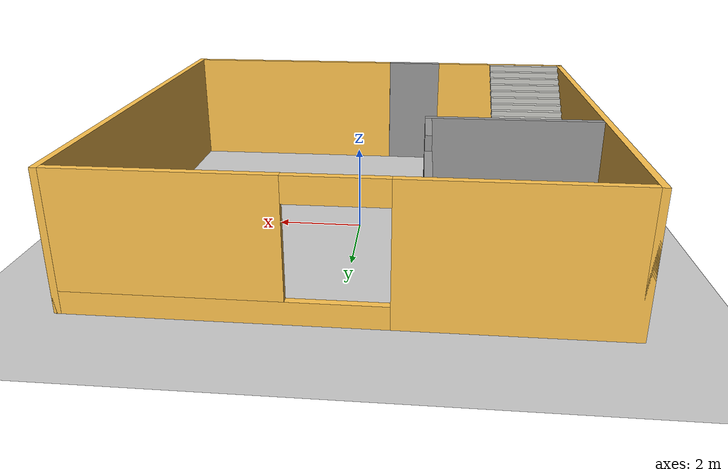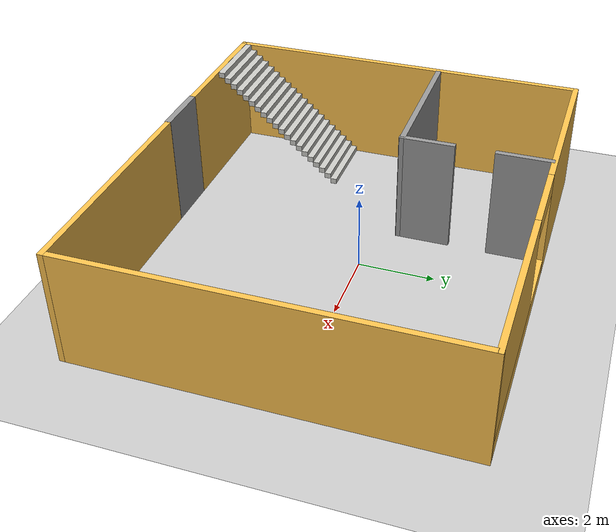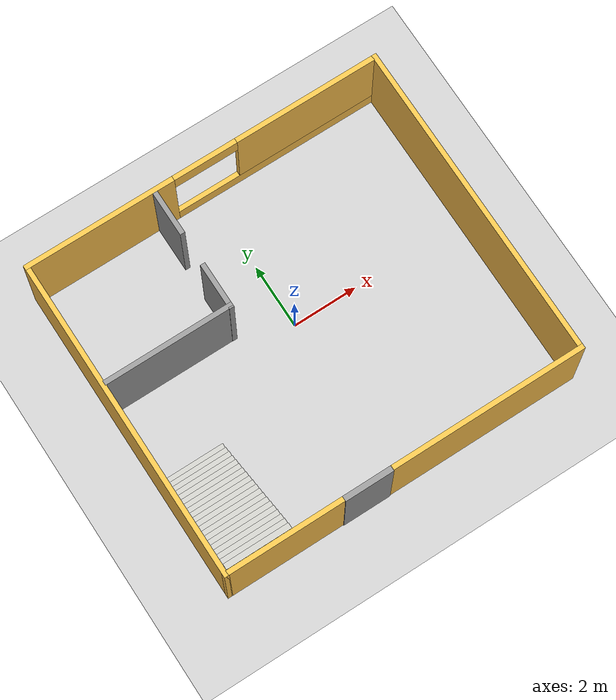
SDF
<sdf version="1.6">
 <world name="default">
  <model name="ground_plane">
   <static>1</static>
   <link name="link">
    <collision name="collision">
     <geometry><plane><normal>0 0 1</normal><size>100 100</size></plane></geometry>
     <surface>
      <contact><collide_bitmask>65535</collide_bitmask></contact>
      <friction><ode><mu>100</mu><mu2>50</mu2></ode></friction>
     </surface>
    </collision>
    <visual name="visual">
     <cast_shadows>0</cast_shadows>
     <geometry><plane><normal>0 0 1</normal><size>100 100</size></plane></geometry>
     <material>
      <script><uri>file://media/materials/scripts/gazebo.material</uri><name>Gazebo/Grey</name></script>
     </material>
    </visual>
   </link>
  </model>
  <model name="single_floor">
   <link name="Door_0">
    <pose>-1.18 -4.9275 0 0 -0 0</pose>
    <visual name="Door_0_Visual">
     <pose>0 0 1.525 0 -0 0</pose>
     <geometry><box><size>1.5 0.17 3.05</size></box></geometry>
     <material>
      <script><uri>file://media/materials/scripts/gazebo.material</uri><name>Gazebo/Grey</name></script>
     </material>
    </visual>
    <collision name="Door_0_Collision">
     <pose>0 0 1.525 0 -0 0</pose>
     <geometry><box><size>1.5 0.17 3.05</size></box></geometry>
     <surface>
      <friction>
       <ode><mu>1</mu><mu2>1</mu2><fdir1>0 0 0</fdir1><slip1>0</slip1><slip2>0</slip2></ode>
       <torsional>
        <coefficient>1</coefficient>
        <patch_radius>0</patch_radius>
        <surface_radius>0</surface_radius>
        <use_patch_radius>1</use_patch_radius>
        <ode><slip>0</slip></ode>
       </torsional>
      </friction>
      <bounce><restitution_coefficient>0</restitution_coefficient><threshold>1e+06</threshold></bounce>
      <contact>
       <collide_without_contact>0</collide_without_contact>
       <collide_without_contact_bitmask>1</collide_without_contact_bitmask>
       <collide_bitmask>1</collide_bitmask>
       <ode>
        <soft_cfm>0</soft_cfm>
        <soft_erp>0.2</soft_erp>
        <kp>1e+13</kp>
        <kd>1</kd>
        <max_vel>0.01</max_vel>
        <min_depth>0</min_depth>
       </ode>
       <bullet>
        <split_impulse>1</split_impulse>
        <split_impulse_penetration_threshold>-0.01</split_impulse_penetration_threshold>
        <soft_cfm>0</soft_cfm>
        <soft_erp>0.2</soft_erp>
        <kp>1e+13</kp>
        <kd>1</kd>
       </bullet>
      </contact>
     </surface>
    </collision>
   </link>
   <link name="Stairs_3">
    <visual name="Stairs_3_Visual_0">
     <pose>-4.47 -1.41525 0.07625 0 -0 0</pose>
     <geometry><box><size>2 0.1755 0.1525</size></box></geometry>
     <material>
      <script><uri>file://media/materials/scripts/gazebo.material</uri><name>Gazebo/CeilingTiled</name></script>
      <ambient>0.760784 0.662745 0.627451 1</ambient>
     </material>
     <meta><layer>0</layer></meta>
    </visual>
    <visual name="Stairs_3_Visual_1">
     <pose>-4.47 -1.59075 0.22875 0 -0 0</pose>
     <geometry><box><size>2 0.1755 0.1525</size></box></geometry>
     <material>
      <script><uri>file://media/materials/scripts/gazebo.material</uri><name>Gazebo/CeilingTiled</name></script>
      <ambient>0.760784 0.662745 0.627451 1</ambient>
     </material>
     <meta><layer>0</layer></meta>
    </visual>
    <visual name="Stairs_3_Visual_2">
     <pose>-4.47 -1.76625 0.38125 0 -0 0</pose>
     <geometry><box><size>2 0.1755 0.1525</size></box></geometry>
     <material>
      <script><uri>file://media/materials/scripts/gazebo.material</uri><name>Gazebo/CeilingTiled</name></script>
      <ambient>0.760784 0.662745 0.627451 1</ambient>
     </material>
     <meta><layer>0</layer></meta>
    </visual>
    <visual name="Stairs_3_Visual_11">
     <pose>-4.47 -3.34575 1.75375 0 -0 0</pose>
     <geometry><box><size>2 0.1755 0.1525</size></box></geometry>
     <material>
      <script><uri>file://media/materials/scripts/gazebo.material</uri><name>Gazebo/CeilingTiled</name></script>
      <ambient>0.760784 0.662745 0.627451 1</ambient>
     </material>
     <meta><layer>0</layer></meta>
    </visual>
    <visual name="Stairs_3_Visual_3">
     <pose>-4.47 -1.94175 0.53375 0 -0 0</pose>
     <geometry><box><size>2 0.1755 0.1525</size></box></geometry>
     <material>
      <script><uri>file://media/materials/scripts/gazebo.material</uri><name>Gazebo/CeilingTiled</name></script>
      <ambient>0.760784 0.662745 0.627451 1</ambient>
     </material>
     <meta><layer>0</layer></meta>
    </visual>
    <visual name="Stairs_3_Visual_4">
     <pose>-4.47 -2.11725 0.68625 0 -0 0</pose>
     <geometry><box><size>2 0.1755 0.1525</size></box></geometry>
     <material>
      <script><uri>file://media/materials/scripts/gazebo.material</uri><name>Gazebo/CeilingTiled</name></script>
      <ambient>0.760784 0.662745 0.627451 1</ambient>
     </material>
     <meta><layer>0</layer></meta>
    </visual>
    <visual name="Stairs_3_Visual_5">
     <pose>-4.47 -2.29275 0.83875 0 -0 0</pose>
     <geometry><box><size>2 0.1755 0.1525</size></box></geometry>
     <material>
      <script><uri>file://media/materials/scripts/gazebo.material</uri><name>Gazebo/CeilingTiled</name></script>
      <ambient>0.760784 0.662745 0.627451 1</ambient>
     </material>
     <meta><layer>0</layer></meta>
    </visual>
    <visual name="Stairs_3_Visual_6">
     <pose>-4.47 -2.46825 0.99125 0 -0 0</pose>
     <geometry><box><size>2 0.1755 0.1525</size></box></geometry>
     <material>
      <script><uri>file://media/materials/scripts/gazebo.material</uri><name>Gazebo/CeilingTiled</name></script>
      <ambient>0.760784 0.662745 0.627451 1</ambient>
     </material>
     <meta><layer>0</layer></meta>
    </visual>
    <visual name="Stairs_3_Visual_7">
     <pose>-4.47 -2.64375 1.14375 0 -0 0</pose>
     <geometry><box><size>2 0.1755 0.1525</size></box></geometry>
     <material>
      <script><uri>file://media/materials/scripts/gazebo.material</uri><name>Gazebo/CeilingTiled</name></script>
      <ambient>0.760784 0.662745 0.627451 1</ambient>
     </material>
     <meta><layer>0</layer></meta>
    </visual>
    <visual name="Stairs_3_Visual_8">
     <pose>-4.47 -2.81925 1.29625 0 -0 0</pose>
     <geometry><box><size>2 0.1755 0.1525</size></box></geometry>
     <material>
      <script><uri>file://media/materials/scripts/gazebo.material</uri><name>Gazebo/CeilingTiled</name></script>
      <ambient>0.760784 0.662745 0.627451 1</ambient>
     </material>
     <meta><layer>0</layer></meta>
    </visual>
    <visual name="Stairs_3_Visual_9">
     <pose>-4.47 -2.99475 1.44875 0 -0 0</pose>
     <geometry><box><size>2 0.1755 0.1525</size></box></geometry>
     <material>
      <script><uri>file://media/materials/scripts/gazebo.material</uri><name>Gazebo/CeilingTiled</name></script>
      <ambient>0.760784 0.662745 0.627451 1</ambient>
     </material>
     <meta><layer>0</layer></meta>
    </visual>
    <visual name="Stairs_3_Visual_10">
     <pose>-4.47 -3.17025 1.60125 0 -0 0</pose>
     <geometry><box><size>2 0.1755 0.1525</size></box></geometry>
     <material>
      <script><uri>file://media/materials/scripts/gazebo.material</uri><name>Gazebo/CeilingTiled</name></script>
      <ambient>0.760784 0.662745 0.627451 1</ambient>
     </material>
     <meta><layer>0</layer></meta>
    </visual>
    <visual name="Stairs_3_Visual_12">
     <pose>-4.47 -3.52125 1.90625 0 -0 0</pose>
     <geometry><box><size>2 0.1755 0.1525</size></box></geometry>
     <material>
      <script><uri>file://media/materials/scripts/gazebo.material</uri><name>Gazebo/CeilingTiled</name></script>
      <ambient>0.760784 0.662745 0.627451 1</ambient>
     </material>
     <meta><layer>0</layer></meta>
    </visual>
    <visual name="Stairs_3_Visual_13">
     <pose>-4.47 -3.69675 2.05875 0 -0 0</pose>
     <geometry><box><size>2 0.1755 0.1525</size></box></geometry>
     <material>
      <script><uri>file://media/materials/scripts/gazebo.material</uri><name>Gazebo/CeilingTiled</name></script>
      <ambient>0.760784 0.662745 0.627451 1</ambient>
     </material>
     <meta><layer>0</layer></meta>
    </visual>
    <visual name="Stairs_3_Visual_14">
     <pose>-4.47 -3.87225 2.21125 0 -0 0</pose>
     <geometry><box><size>2 0.1755 0.1525</size></box></geometry>
     <material>
      <script><uri>file://media/materials/scripts/gazebo.material</uri><name>Gazebo/CeilingTiled</name></script>
      <ambient>0.760784 0.662745 0.627451 1</ambient>
     </material>
     <meta><layer>0</layer></meta>
    </visual>
    <visual name="Stairs_3_Visual_15">
     <pose>-4.47 -4.04775 2.36375 0 -0 0</pose>
     <geometry><box><size>2 0.1755 0.1525</size></box></geometry>
     <material>
      <script><uri>file://media/materials/scripts/gazebo.material</uri><name>Gazebo/CeilingTiled</name></script>
      <ambient>0.760784 0.662745 0.627451 1</ambient>
     </material>
     <meta><layer>0</layer></meta>
    </visual>
    <visual name="Stairs_3_Visual_16">
     <pose>-4.47 -4.22325 2.51625 0 -0 0</pose>
     <geometry><box><size>2 0.1755 0.1525</size></box></geometry>
     <material>
      <script><uri>file://media/materials/scripts/gazebo.material</uri><name>Gazebo/CeilingTiled</name></script>
      <ambient>0.760784 0.662745 0.627451 1</ambient>
     </material>
     <meta><layer>0</layer></meta>
    </visual>
    <visual name="Stairs_3_Visual_17">
     <pose>-4.47 -4.39875 2.66875 0 -0 0</pose>
     <geometry><box><size>2 0.1755 0.1525</size></box></geometry>
     <material>
      <script><uri>file://media/materials/scripts/gazebo.material</uri><name>Gazebo/CeilingTiled</name></script>
      <ambient>0.760784 0.662745 0.627451 1</ambient>
     </material>
     <meta><layer>0</layer></meta>
    </visual>
    <visual name="Stairs_3_Visual_18">
     <pose>-4.47 -4.57425 2.82125 0 -0 0</pose>
     <geometry><box><size>2 0.1755 0.1525</size></box></geometry>
     <material>
      <script><uri>file://media/materials/scripts/gazebo.material</uri><name>Gazebo/CeilingTiled</name></script>
      <ambient>0.760784 0.662745 0.627451 1</ambient>
     </material>
     <meta><layer>0</layer></meta>
    </visual>
    <visual name="Stairs_3_Visual_19">
     <pose>-4.47 -4.74975 2.97375 0 -0 0</pose>
     <geometry><box><size>2 0.1755 0.1525</size></box></geometry>
     <material>
      <script><uri>file://media/materials/scripts/gazebo.material</uri><name>Gazebo/CeilingTiled</name></script>
      <ambient>0.760784 0.662745 0.627451 1</ambient>
     </material>
     <meta><layer>0</layer></meta>
    </visual>
    <collision name="Stairs_3_Collision_0">
     <pose>-4.47 -1.41525 0.07625 0 -0 0</pose>
     <geometry><box><size>2 0.1755 0.1525</size></box></geometry>
     <surface>
      <friction>
       <ode><mu>1</mu><mu2>1</mu2><fdir1>0 0 0</fdir1><slip1>0</slip1><slip2>0</slip2></ode>
       <torsional>
        <coefficient>1</coefficient>
        <patch_radius>0</patch_radius>
        <surface_radius>0</surface_radius>
        <use_patch_radius>1</use_patch_radius>
        <ode><slip>0</slip></ode>
       </torsional>
      </friction>
      <bounce><restitution_coefficient>0</restitution_coefficient><threshold>1e+06</threshold></bounce>
      <contact>
       <collide_without_contact>0</collide_without_contact>
       <collide_without_contact_bitmask>1</collide_without_contact_bitmask>
       <collide_bitmask>1</collide_bitmask>
       <ode>
        <soft_cfm>0</soft_cfm>
        <soft_erp>0.2</soft_erp>
        <kp>1e+13</kp>
        <kd>1</kd>
        <max_vel>0.01</max_vel>
        <min_depth>0</min_depth>
       </ode>
       <bullet>
        <split_impulse>1</split_impulse>
        <split_impulse_penetration_threshold>-0.01</split_impulse_penetration_threshold>
        <soft_cfm>0</soft_cfm>
        <soft_erp>0.2</soft_erp>
        <kp>1e+13</kp>
        <kd>1</kd>
       </bullet>
      </contact>
     </surface>
    </collision>
    <collision name="Stairs_3_Collision_1">
     <pose>-4.47 -1.59075 0.22875 0 -0 0</pose>
     <geometry><box><size>2 0.1755 0.1525</size></box></geometry>
     <surface>
      <friction>
       <ode><mu>1</mu><mu2>1</mu2><fdir1>0 0 0</fdir1><slip1>0</slip1><slip2>0</slip2></ode>
       <torsional>
        <coefficient>1</coefficient>
        <patch_radius>0</patch_radius>
        <surface_radius>0</surface_radius>
        <use_patch_radius>1</use_patch_radius>
        <ode><slip>0</slip></ode>
       </torsional>
      </friction>
      <bounce><restitution_coefficient>0</restitution_coefficient><threshold>1e+06</threshold></bounce>
      <contact>
       <collide_without_contact>0</collide_without_contact>
       <collide_without_contact_bitmask>1</collide_without_contact_bitmask>
       <collide_bitmask>1</collide_bitmask>
       <ode>
        <soft_cfm>0</soft_cfm>
        <soft_erp>0.2</soft_erp>
        <kp>1e+13</kp>
        <kd>1</kd>
        <max_vel>0.01</max_vel>
        <min_depth>0</min_depth>
       </ode>
       <bullet>
        <split_impulse>1</split_impulse>
        <split_impulse_penetration_threshold>-0.01</split_impulse_penetration_threshold>
        <soft_cfm>0</soft_cfm>
        <soft_erp>0.2</soft_erp>
        <kp>1e+13</kp>
        <kd>1</kd>
       </bullet>
      </contact>
     </surface>
    </collision>
    <collision name="Stairs_3_Collision_2">
     <pose>-4.47 -1.76625 0.38125 0 -0 0</pose>
     <geometry><box><size>2 0.1755 0.1525</size></box></geometry>
     <surface>
      <friction>
       <ode><mu>1</mu><mu2>1</mu2><fdir1>0 0 0</fdir1><slip1>0</slip1><slip2>0</slip2></ode>
       <torsional>
        <coefficient>1</coefficient>
        <patch_radius>0</patch_radius>
        <surface_radius>0</surface_radius>
        <use_patch_radius>1</use_patch_radius>
        <ode><slip>0</slip></ode>
       </torsional>
      </friction>
      <bounce><restitution_coefficient>0</restitution_coefficient><threshold>1e+06</threshold></bounce>
      <contact>
       <collide_without_contact>0</collide_without_contact>
       <collide_without_contact_bitmask>1</collide_without_contact_bitmask>
       <collide_bitmask>1</collide_bitmask>
       <ode>
        <soft_cfm>0</soft_cfm>
        <soft_erp>0.2</soft_erp>
        <kp>1e+13</kp>
        <kd>1</kd>
        <max_vel>0.01</max_vel>
        <min_depth>0</min_depth>
       </ode>
       <bullet>
        <split_impulse>1</split_impulse>
        <split_impulse_penetration_threshold>-0.01</split_impulse_penetration_threshold>
        <soft_cfm>0</soft_cfm>
        <soft_erp>0.2</soft_erp>
        <kp>1e+13</kp>
        <kd>1</kd>
       </bullet>
      </contact>
     </surface>
    </collision>
    <collision name="Stairs_3_Collision_3">
     <pose>-4.47 -1.94175 0.53375 0 -0 0</pose>
     <geometry><box><size>2 0.1755 0.1525</size></box></geometry>
     <surface>
      <friction>
       <ode><mu>1</mu><mu2>1</mu2><fdir1>0 0 0</fdir1><slip1>0</slip1><slip2>0</slip2></ode>
       <torsional>
        <coefficient>1</coefficient>
        <patch_radius>0</patch_radius>
        <surface_radius>0</surface_radius>
        <use_patch_radius>1</use_patch_radius>
        <ode><slip>0</slip></ode>
       </torsional>
      </friction>
      <bounce><restitution_coefficient>0</restitution_coefficient><threshold>1e+06</threshold></bounce>
      <contact>
       <collide_without_contact>0</collide_without_contact>
       <collide_without_contact_bitmask>1</collide_without_contact_bitmask>
       <collide_bitmask>1</collide_bitmask>
       <ode>
        <soft_cfm>0</soft_cfm>
        <soft_erp>0.2</soft_erp>
        <kp>1e+13</kp>
        <kd>1</kd>
        <max_vel>0.01</max_vel>
        <min_depth>0</min_depth>
       </ode>
       <bullet>
        <split_impulse>1</split_impulse>
        <split_impulse_penetration_threshold>-0.01</split_impulse_penetration_threshold>
        <soft_cfm>0</soft_cfm>
        <soft_erp>0.2</soft_erp>
        <kp>1e+13</kp>
        <kd>1</kd>
       </bullet>
      </contact>
     </surface>
    </collision>
    <collision name="Stairs_3_Collision_4">
     <pose>-4.47 -2.11725 0.68625 0 -0 0</pose>
     <geometry><box><size>2 0.1755 0.1525</size></box></geometry>
     <surface>
      <friction>
       <ode><mu>1</mu><mu2>1</mu2><fdir1>0 0 0</fdir1><slip1>0</slip1><slip2>0</slip2></ode>
       <torsional>
        <coefficient>1</coefficient>
        <patch_radius>0</patch_radius>
        <surface_radius>0</surface_radius>
        <use_patch_radius>1</use_patch_radius>
        <ode><slip>0</slip></ode>
       </torsional>
      </friction>
      <bounce><restitution_coefficient>0</restitution_coefficient><threshold>1e+06</threshold></bounce>
      <contact>
       <collide_without_contact>0</collide_without_contact>
       <collide_without_contact_bitmask>1</collide_without_contact_bitmask>
       <collide_bitmask>1</collide_bitmask>
       <ode>
        <soft_cfm>0</soft_cfm>
        <soft_erp>0.2</soft_erp>
        <kp>1e+13</kp>
        <kd>1</kd>
        <max_vel>0.01</max_vel>
        <min_depth>0</min_depth>
       </ode>
       <bullet>
        <split_impulse>1</split_impulse>
        <split_impulse_penetration_threshold>-0.01</split_impulse_penetration_threshold>
        <soft_cfm>0</soft_cfm>
        <soft_erp>0.2</soft_erp>
        <kp>1e+13</kp>
        <kd>1</kd>
       </bullet>
      </contact>
     </surface>
    </collision>
    <collision name="Stairs_3_Collision_5">
     <pose>-4.47 -2.29275 0.83875 0 -0 0</pose>
     <geometry><box><size>2 0.1755 0.1525</size></box></geometry>
     <surface>
      <friction>
       <ode><mu>1</mu><mu2>1</mu2><fdir1>0 0 0</fdir1><slip1>0</slip1><slip2>0</slip2></ode>
       <torsional>
        <coefficient>1</coefficient>
        <patch_radius>0</patch_radius>
        <surface_radius>0</surface_radius>
        <use_patch_radius>1</use_patch_radius>
        <ode><slip>0</slip></ode>
       </torsional>
      </friction>
      <bounce><restitution_coefficient>0</restitution_coefficient><threshold>1e+06</threshold></bounce>
      <contact>
       <collide_without_contact>0</collide_without_contact>
       <collide_without_contact_bitmask>1</collide_without_contact_bitmask>
       <collide_bitmask>1</collide_bitmask>
       <ode>
        <soft_cfm>0</soft_cfm>
        <soft_erp>0.2</soft_erp>
        <kp>1e+13</kp>
        <kd>1</kd>
        <max_vel>0.01</max_vel>
        <min_depth>0</min_depth>
       </ode>
       <bullet>
        <split_impulse>1</split_impulse>
        <split_impulse_penetration_threshold>-0.01</split_impulse_penetration_threshold>
        <soft_cfm>0</soft_cfm>
        <soft_erp>0.2</soft_erp>
        <kp>1e+13</kp>
        <kd>1</kd>
       </bullet>
      </contact>
     </surface>
    </collision>
    <collision name="Stairs_3_Collision_6">
     <pose>-4.47 -2.46825 0.99125 0 -0 0</pose>
     <geometry><box><size>2 0.1755 0.1525</size></box></geometry>
     <surface>
      <friction>
       <ode><mu>1</mu><mu2>1</mu2><fdir1>0 0 0</fdir1><slip1>0</slip1><slip2>0</slip2></ode>
       <torsional>
        <coefficient>1</coefficient>
        <patch_radius>0</patch_radius>
        <surface_radius>0</surface_radius>
        <use_patch_radius>1</use_patch_radius>
        <ode><slip>0</slip></ode>
       </torsional>
      </friction>
      <bounce><restitution_coefficient>0</restitution_coefficient><threshold>1e+06</threshold></bounce>
      <contact>
       <collide_without_contact>0</collide_without_contact>
       <collide_without_contact_bitmask>1</collide_without_contact_bitmask>
       <collide_bitmask>1</collide_bitmask>
       <ode>
        <soft_cfm>0</soft_cfm>
        <soft_erp>0.2</soft_erp>
        <kp>1e+13</kp>
        <kd>1</kd>
        <max_vel>0.01</max_vel>
        <min_depth>0</min_depth>
       </ode>
       <bullet>
        <split_impulse>1</split_impulse>
        <split_impulse_penetration_threshold>-0.01</split_impulse_penetration_threshold>
        <soft_cfm>0</soft_cfm>
        <soft_erp>0.2</soft_erp>
        <kp>1e+13</kp>
        <kd>1</kd>
       </bullet>
      </contact>
     </surface>
    </collision>
    <collision name="Stairs_3_Collision_7">
     <pose>-4.47 -2.64375 1.14375 0 -0 0</pose>
     <geometry><box><size>2 0.1755 0.1525</size></box></geometry>
     <surface>
      <friction>
       <ode><mu>1</mu><mu2>1</mu2><fdir1>0 0 0</fdir1><slip1>0</slip1><slip2>0</slip2></ode>
       <torsional>
        <coefficient>1</coefficient>
        <patch_radius>0</patch_radius>
        <surface_radius>0</surface_radius>
        <use_patch_radius>1</use_patch_radius>
        <ode><slip>0</slip></ode>
       </torsional>
      </friction>
      <bounce><restitution_coefficient>0</restitution_coefficient><threshold>1e+06</threshold></bounce>
      <contact>
       <collide_without_contact>0</collide_without_contact>
       <collide_without_contact_bitmask>1</collide_without_contact_bitmask>
       <collide_bitmask>1</collide_bitmask>
       <ode>
        <soft_cfm>0</soft_cfm>
        <soft_erp>0.2</soft_erp>
        <kp>1e+13</kp>
        <kd>1</kd>
        <max_vel>0.01</max_vel>
        <min_depth>0</min_depth>
       </ode>
       <bullet>
        <split_impulse>1</split_impulse>
        <split_impulse_penetration_threshold>-0.01</split_impulse_penetration_threshold>
        <soft_cfm>0</soft_cfm>
        <soft_erp>0.2</soft_erp>
        <kp>1e+13</kp>
        <kd>1</kd>
       </bullet>
      </contact>
     </surface>
    </collision>
    <collision name="Stairs_3_Collision_8">
     <pose>-4.47 -2.81925 1.29625 0 -0 0</pose>
     <geometry><box><size>2 0.1755 0.1525</size></box></geometry>
     <surface>
      <friction>
       <ode><mu>1</mu><mu2>1</mu2><fdir1>0 0 0</fdir1><slip1>0</slip1><slip2>0</slip2></ode>
       <torsional>
        <coefficient>1</coefficient>
        <patch_radius>0</patch_radius>
        <surface_radius>0</surface_radius>
        <use_patch_radius>1</use_patch_radius>
        <ode><slip>0</slip></ode>
       </torsional>
      </friction>
      <bounce><restitution_coefficient>0</restitution_coefficient><threshold>1e+06</threshold></bounce>
      <contact>
       <collide_without_contact>0</collide_without_contact>
       <collide_without_contact_bitmask>1</collide_without_contact_bitmask>
       <collide_bitmask>1</collide_bitmask>
       <ode>
        <soft_cfm>0</soft_cfm>
        <soft_erp>0.2</soft_erp>
        <kp>1e+13</kp>
        <kd>1</kd>
        <max_vel>0.01</max_vel>
        <min_depth>0</min_depth>
       </ode>
       <bullet>
        <split_impulse>1</split_impulse>
        <split_impulse_penetration_threshold>-0.01</split_impulse_penetration_threshold>
        <soft_cfm>0</soft_cfm>
        <soft_erp>0.2</soft_erp>
        <kp>1e+13</kp>
        <kd>1</kd>
       </bullet>
      </contact>
     </surface>
    </collision>
    <collision name="Stairs_3_Collision_9">
     <pose>-4.47 -2.99475 1.44875 0 -0 0</pose>
     <geometry><box><size>2 0.1755 0.1525</size></box></geometry>
     <surface>
      <friction>
       <ode><mu>1</mu><mu2>1</mu2><fdir1>0 0 0</fdir1><slip1>0</slip1><slip2>0</slip2></ode>
       <torsional>
        <coefficient>1</coefficient>
        <patch_radius>0</patch_radius>
        <surface_radius>0</surface_radius>
        <use_patch_radius>1</use_patch_radius>
        <ode><slip>0</slip></ode>
       </torsional>
      </friction>
      <bounce><restitution_coefficient>0</restitution_coefficient><threshold>1e+06</threshold></bounce>
      <contact>
       <collide_without_contact>0</collide_without_contact>
       <collide_without_contact_bitmask>1</collide_without_contact_bitmask>
       <collide_bitmask>1</collide_bitmask>
       <ode>
        <soft_cfm>0</soft_cfm>
        <soft_erp>0.2</soft_erp>
        <kp>1e+13</kp>
        <kd>1</kd>
        <max_vel>0.01</max_vel>
        <min_depth>0</min_depth>
       </ode>
       <bullet>
        <split_impulse>1</split_impulse>
        <split_impulse_penetration_threshold>-0.01</split_impulse_penetration_threshold>
        <soft_cfm>0</soft_cfm>
        <soft_erp>0.2</soft_erp>
        <kp>1e+13</kp>
        <kd>1</kd>
       </bullet>
      </contact>
     </surface>
    </collision>
    <collision name="Stairs_3_Collision_10">
     <pose>-4.47 -3.17025 1.60125 0 -0 0</pose>
     <geometry><box><size>2 0.1755 0.1525</size></box></geometry>
     <surface>
      <friction>
       <ode><mu>1</mu><mu2>1</mu2><fdir1>0 0 0</fdir1><slip1>0</slip1><slip2>0</slip2></ode>
       <torsional>
        <coefficient>1</coefficient>
        <patch_radius>0</patch_radius>
        <surface_radius>0</surface_radius>
        <use_patch_radius>1</use_patch_radius>
        <ode><slip>0</slip></ode>
       </torsional>
      </friction>
      <bounce><restitution_coefficient>0</restitution_coefficient><threshold>1e+06</threshold></bounce>
      <contact>
       <collide_without_contact>0</collide_without_contact>
       <collide_without_contact_bitmask>1</collide_without_contact_bitmask>
       <collide_bitmask>1</collide_bitmask>
       <ode>
        <soft_cfm>0</soft_cfm>
        <soft_erp>0.2</soft_erp>
        <kp>1e+13</kp>
        <kd>1</kd>
        <max_vel>0.01</max_vel>
        <min_depth>0</min_depth>
       </ode>
       <bullet>
        <split_impulse>1</split_impulse>
        <split_impulse_penetration_threshold>-0.01</split_impulse_penetration_threshold>
        <soft_cfm>0</soft_cfm>
        <soft_erp>0.2</soft_erp>
        <kp>1e+13</kp>
        <kd>1</kd>
       </bullet>
      </contact>
     </surface>
    </collision>
    <collision name="Stairs_3_Collision_11">
     <pose>-4.47 -3.34575 1.75375 0 -0 0</pose>
     <geometry><box><size>2 0.1755 0.1525</size></box></geometry>
     <surface>
      <friction>
       <ode><mu>1</mu><mu2>1</mu2><fdir1>0 0 0</fdir1><slip1>0</slip1><slip2>0</slip2></ode>
       <torsional>
        <coefficient>1</coefficient>
        <patch_radius>0</patch_radius>
        <surface_radius>0</surface_radius>
        <use_patch_radius>1</use_patch_radius>
        <ode><slip>0</slip></ode>
       </torsional>
      </friction>
      <bounce><restitution_coefficient>0</restitution_coefficient><threshold>1e+06</threshold></bounce>
      <contact>
       <collide_without_contact>0</collide_without_contact>
       <collide_without_contact_bitmask>1</collide_without_contact_bitmask>
       <collide_bitmask>1</collide_bitmask>
       <ode>
        <soft_cfm>0</soft_cfm>
        <soft_erp>0.2</soft_erp>
        <kp>1e+13</kp>
        <kd>1</kd>
        <max_vel>0.01</max_vel>
        <min_depth>0</min_depth>
       </ode>
       <bullet>
        <split_impulse>1</split_impulse>
        <split_impulse_penetration_threshold>-0.01</split_impulse_penetration_threshold>
        <soft_cfm>0</soft_cfm>
        <soft_erp>0.2</soft_erp>
        <kp>1e+13</kp>
        <kd>1</kd>
       </bullet>
      </contact>
     </surface>
    </collision>
    <collision name="Stairs_3_Collision_12">
     <pose>-4.47 -3.52125 1.90625 0 -0 0</pose>
     <geometry><box><size>2 0.1755 0.1525</size></box></geometry>
     <surface>
      <friction>
       <ode><mu>1</mu><mu2>1</mu2><fdir1>0 0 0</fdir1><slip1>0</slip1><slip2>0</slip2></ode>
       <torsional>
        <coefficient>1</coefficient>
        <patch_radius>0</patch_radius>
        <surface_radius>0</surface_radius>
        <use_patch_radius>1</use_patch_radius>
        <ode><slip>0</slip></ode>
       </torsional>
      </friction>
      <bounce><restitution_coefficient>0</restitution_coefficient><threshold>1e+06</threshold></bounce>
      <contact>
       <collide_without_contact>0</collide_without_contact>
       <collide_without_contact_bitmask>1</collide_without_contact_bitmask>
       <collide_bitmask>1</collide_bitmask>
       <ode>
        <soft_cfm>0</soft_cfm>
        <soft_erp>0.2</soft_erp>
        <kp>1e+13</kp>
        <kd>1</kd>
        <max_vel>0.01</max_vel>
        <min_depth>0</min_depth>
       </ode>
       <bullet>
        <split_impulse>1</split_impulse>
        <split_impulse_penetration_threshold>-0.01</split_impulse_penetration_threshold>
        <soft_cfm>0</soft_cfm>
        <soft_erp>0.2</soft_erp>
        <kp>1e+13</kp>
        <kd>1</kd>
       </bullet>
      </contact>
     </surface>
    </collision>
    <collision name="Stairs_3_Collision_13">
     <pose>-4.47 -3.69675 2.05875 0 -0 0</pose>
     <geometry><box><size>2 0.1755 0.1525</size></box></geometry>
     <surface>
      <friction>
       <ode><mu>1</mu><mu2>1</mu2><fdir1>0 0 0</fdir1><slip1>0</slip1><slip2>0</slip2></ode>
       <torsional>
        <coefficient>1</coefficient>
        <patch_radius>0</patch_radius>
        <surface_radius>0</surface_radius>
        <use_patch_radius>1</use_patch_radius>
        <ode><slip>0</slip></ode>
       </torsional>
      </friction>
      <bounce><restitution_coefficient>0</restitution_coefficient><threshold>1e+06</threshold></bounce>
      <contact>
       <collide_without_contact>0</collide_without_contact>
       <collide_without_contact_bitmask>1</collide_without_contact_bitmask>
       <collide_bitmask>1</collide_bitmask>
       <ode>
        <soft_cfm>0</soft_cfm>
        <soft_erp>0.2</soft_erp>
        <kp>1e+13</kp>
        <kd>1</kd>
        <max_vel>0.01</max_vel>
        <min_depth>0</min_depth>
       </ode>
       <bullet>
        <split_impulse>1</split_impulse>
        <split_impulse_penetration_threshold>-0.01</split_impulse_penetration_threshold>
        <soft_cfm>0</soft_cfm>
        <soft_erp>0.2</soft_erp>
        <kp>1e+13</kp>
        <kd>1</kd>
       </bullet>
      </contact>
     </surface>
    </collision>
    <collision name="Stairs_3_Collision_14">
     <pose>-4.47 -3.87225 2.21125 0 -0 0</pose>
     <geometry><box><size>2 0.1755 0.1525</size></box></geometry>
     <surface>
      <friction>
       <ode><mu>1</mu><mu2>1</mu2><fdir1>0 0 0</fdir1><slip1>0</slip1><slip2>0</slip2></ode>
       <torsional>
        <coefficient>1</coefficient>
        <patch_radius>0</patch_radius>
        <surface_radius>0</surface_radius>
        <use_patch_radius>1</use_patch_radius>
        <ode><slip>0</slip></ode>
       </torsional>
      </friction>
      <bounce><restitution_coefficient>0</restitution_coefficient><threshold>1e+06</threshold></bounce>
      <contact>
       <collide_without_contact>0</collide_without_contact>
       <collide_without_contact_bitmask>1</collide_without_contact_bitmask>
       <collide_bitmask>1</collide_bitmask>
       <ode>
        <soft_cfm>0</soft_cfm>
        <soft_erp>0.2</soft_erp>
        <kp>1e+13</kp>
        <kd>1</kd>
        <max_vel>0.01</max_vel>
        <min_depth>0</min_depth>
       </ode>
       <bullet>
        <split_impulse>1</split_impulse>
        <split_impulse_penetration_threshold>-0.01</split_impulse_penetration_threshold>
        <soft_cfm>0</soft_cfm>
        <soft_erp>0.2</soft_erp>
        <kp>1e+13</kp>
        <kd>1</kd>
       </bullet>
      </contact>
     </surface>
    </collision>
    <collision name="Stairs_3_Collision_15">
     <pose>-4.47 -4.04775 2.36375 0 -0 0</pose>
     <geometry><box><size>2 0.1755 0.1525</size></box></geometry>
     <surface>
      <friction>
       <ode><mu>1</mu><mu2>1</mu2><fdir1>0 0 0</fdir1><slip1>0</slip1><slip2>0</slip2></ode>
       <torsional>
        <coefficient>1</coefficient>
        <patch_radius>0</patch_radius>
        <surface_radius>0</surface_radius>
        <use_patch_radius>1</use_patch_radius>
        <ode><slip>0</slip></ode>
       </torsional>
      </friction>
      <bounce><restitution_coefficient>0</restitution_coefficient><threshold>1e+06</threshold></bounce>
      <contact>
       <collide_without_contact>0</collide_without_contact>
       <collide_without_contact_bitmask>1</collide_without_contact_bitmask>
       <collide_bitmask>1</collide_bitmask>
       <ode>
        <soft_cfm>0</soft_cfm>
        <soft_erp>0.2</soft_erp>
        <kp>1e+13</kp>
        <kd>1</kd>
        <max_vel>0.01</max_vel>
        <min_depth>0</min_depth>
       </ode>
       <bullet>
        <split_impulse>1</split_impulse>
        <split_impulse_penetration_threshold>-0.01</split_impulse_penetration_threshold>
        <soft_cfm>0</soft_cfm>
        <soft_erp>0.2</soft_erp>
        <kp>1e+13</kp>
        <kd>1</kd>
       </bullet>
      </contact>
     </surface>
    </collision>
    <collision name="Stairs_3_Collision_16">
     <pose>-4.47 -4.22325 2.51625 0 -0 0</pose>
     <geometry><box><size>2 0.1755 0.1525</size></box></geometry>
     <surface>
      <friction>
       <ode><mu>1</mu><mu2>1</mu2><fdir1>0 0 0</fdir1><slip1>0</slip1><slip2>0</slip2></ode>
       <torsional>
        <coefficient>1</coefficient>
        <patch_radius>0</patch_radius>
        <surface_radius>0</surface_radius>
        <use_patch_radius>1</use_patch_radius>
        <ode><slip>0</slip></ode>
       </torsional>
      </friction>
      <bounce><restitution_coefficient>0</restitution_coefficient><threshold>1e+06</threshold></bounce>
      <contact>
       <collide_without_contact>0</collide_without_contact>
       <collide_without_contact_bitmask>1</collide_without_contact_bitmask>
       <collide_bitmask>1</collide_bitmask>
       <ode>
        <soft_cfm>0</soft_cfm>
        <soft_erp>0.2</soft_erp>
        <kp>1e+13</kp>
        <kd>1</kd>
        <max_vel>0.01</max_vel>
        <min_depth>0</min_depth>
       </ode>
       <bullet>
        <split_impulse>1</split_impulse>
        <split_impulse_penetration_threshold>-0.01</split_impulse_penetration_threshold>
        <soft_cfm>0</soft_cfm>
        <soft_erp>0.2</soft_erp>
        <kp>1e+13</kp>
        <kd>1</kd>
       </bullet>
      </contact>
     </surface>
    </collision>
    <collision name="Stairs_3_Collision_17">
     <pose>-4.47 -4.39875 2.66875 0 -0 0</pose>
     <geometry><box><size>2 0.1755 0.1525</size></box></geometry>
     <surface>
      <friction>
       <ode><mu>1</mu><mu2>1</mu2><fdir1>0 0 0</fdir1><slip1>0</slip1><slip2>0</slip2></ode>
       <torsional>
        <coefficient>1</coefficient>
        <patch_radius>0</patch_radius>
        <surface_radius>0</surface_radius>
        <use_patch_radius>1</use_patch_radius>
        <ode><slip>0</slip></ode>
       </torsional>
      </friction>
      <bounce><restitution_coefficient>0</restitution_coefficient><threshold>1e+06</threshold></bounce>
      <contact>
       <collide_without_contact>0</collide_without_contact>
       <collide_without_contact_bitmask>1</collide_without_contact_bitmask>
       <collide_bitmask>1</collide_bitmask>
       <ode>
        <soft_cfm>0</soft_cfm>
        <soft_erp>0.2</soft_erp>
        <kp>1e+13</kp>
        <kd>1</kd>
        <max_vel>0.01</max_vel>
        <min_depth>0</min_depth>
       </ode>
       <bullet>
        <split_impulse>1</split_impulse>
        <split_impulse_penetration_threshold>-0.01</split_impulse_penetration_threshold>
        <soft_cfm>0</soft_cfm>
        <soft_erp>0.2</soft_erp>
        <kp>1e+13</kp>
        <kd>1</kd>
       </bullet>
      </contact>
     </surface>
    </collision>
    <collision name="Stairs_3_Collision_18">
     <pose>-4.47 -4.57425 2.82125 0 -0 0</pose>
     <geometry><box><size>2 0.1755 0.1525</size></box></geometry>
     <surface>
      <friction>
       <ode><mu>1</mu><mu2>1</mu2><fdir1>0 0 0</fdir1><slip1>0</slip1><slip2>0</slip2></ode>
       <torsional>
        <coefficient>1</coefficient>
        <patch_radius>0</patch_radius>
        <surface_radius>0</surface_radius>
        <use_patch_radius>1</use_patch_radius>
        <ode><slip>0</slip></ode>
       </torsional>
      </friction>
      <bounce><restitution_coefficient>0</restitution_coefficient><threshold>1e+06</threshold></bounce>
      <contact>
       <collide_without_contact>0</collide_without_contact>
       <collide_without_contact_bitmask>1</collide_without_contact_bitmask>
       <collide_bitmask>1</collide_bitmask>
       <ode>
        <soft_cfm>0</soft_cfm>
        <soft_erp>0.2</soft_erp>
        <kp>1e+13</kp>
        <kd>1</kd>
        <max_vel>0.01</max_vel>
        <min_depth>0</min_depth>
       </ode>
       <bullet>
        <split_impulse>1</split_impulse>
        <split_impulse_penetration_threshold>-0.01</split_impulse_penetration_threshold>
        <soft_cfm>0</soft_cfm>
        <soft_erp>0.2</soft_erp>
        <kp>1e+13</kp>
        <kd>1</kd>
       </bullet>
      </contact>
     </surface>
    </collision>
    <collision name="Stairs_3_Collision_19">
     <pose>-4.47 -4.74975 2.97375 0 -0 0</pose>
     <geometry><box><size>2 0.1755 0.1525</size></box></geometry>
     <surface>
      <friction>
       <ode><mu>1</mu><mu2>1</mu2><fdir1>0 0 0</fdir1><slip1>0</slip1><slip2>0</slip2></ode>
       <torsional>
        <coefficient>1</coefficient>
        <patch_radius>0</patch_radius>
        <surface_radius>0</surface_radius>
        <use_patch_radius>1</use_patch_radius>
        <ode><slip>0</slip></ode>
       </torsional>
      </friction>
      <bounce><restitution_coefficient>0</restitution_coefficient><threshold>1e+06</threshold></bounce>
      <contact>
       <collide_without_contact>0</collide_without_contact>
       <collide_without_contact_bitmask>1</collide_without_contact_bitmask>
       <collide_bitmask>1</collide_bitmask>
       <ode>
        <soft_cfm>0</soft_cfm>
        <soft_erp>0.2</soft_erp>
        <kp>1e+13</kp>
        <kd>1</kd>
        <max_vel>0.01</max_vel>
        <min_depth>0</min_depth>
       </ode>
       <bullet>
        <split_impulse>1</split_impulse>
        <split_impulse_penetration_threshold>-0.01</split_impulse_penetration_threshold>
        <soft_cfm>0</soft_cfm>
        <soft_erp>0.2</soft_erp>
        <kp>1e+13</kp>
        <kd>1</kd>
       </bullet>
      </contact>
     </surface>
    </collision>
   </link>
   <link name="Wall_10">
    <pose>5.55 0.0075 0 0 0 -1.5708</pose>
    <visual name="Wall_10_Visual">
     <pose>0 0 1.525 0 -0 0</pose>
     <geometry><box><size>10 0.15 3.05</size></box></geometry>
     <material>
      <script><uri>file://media/materials/scripts/gazebo.material</uri><name>Gazebo/Grey</name></script>
      <ambient>1 0.764706 0.305882 1</ambient>
     </material>
     <meta><layer>0</layer></meta>
    </visual>
    <collision name="Wall_10_Collision">
     <pose>0 0 1.525 0 -0 0</pose>
     <geometry><box><size>10 0.15 3.05</size></box></geometry>
     <surface>
      <friction>
       <ode><mu>1</mu><mu2>1</mu2><fdir1>0 0 0</fdir1><slip1>0</slip1><slip2>0</slip2></ode>
       <torsional>
        <coefficient>1</coefficient>
        <patch_radius>0</patch_radius>
        <surface_radius>0</surface_radius>
        <use_patch_radius>1</use_patch_radius>
        <ode><slip>0</slip></ode>
       </torsional>
      </friction>
      <bounce><restitution_coefficient>0</restitution_coefficient><threshold>1e+06</threshold></bounce>
      <contact>
       <collide_without_contact>0</collide_without_contact>
       <collide_without_contact_bitmask>1</collide_without_contact_bitmask>
       <collide_bitmask>1</collide_bitmask>
       <ode>
        <soft_cfm>0</soft_cfm>
        <soft_erp>0.2</soft_erp>
        <kp>1e+13</kp>
        <kd>1</kd>
        <max_vel>0.01</max_vel>
        <min_depth>0</min_depth>
       </ode>
       <bullet>
        <split_impulse>1</split_impulse>
        <split_impulse_penetration_threshold>-0.01</split_impulse_penetration_threshold>
        <soft_cfm>0</soft_cfm>
        <soft_erp>0.2</soft_erp>
        <kp>1e+13</kp>
        <kd>1</kd>
       </bullet>
      </contact>
     </surface>
    </collision>
   </link>
   <link name="Wall_12">
    <pose>-3.776 -4.9175 0 0 -0 0</pose>
    <visual name="Wall_12_Visual">
     <pose>0 0 1.525 0 -0 0</pose>
     <geometry><box><size>3.698 0.15 3.05</size></box></geometry>
     <material>
      <script><uri>file://media/materials/scripts/gazebo.material</uri><name>Gazebo/Grey</name></script>
      <ambient>1 0.764706 0.305882 1</ambient>
     </material>
     <meta><layer>0</layer></meta>
    </visual>
    <collision name="Wall_12_Collision">
     <pose>0 0 1.525 0 -0 0</pose>
     <geometry><box><size>3.698 0.15 3.05</size></box></geometry>
     <surface>
      <friction>
       <ode><mu>1</mu><mu2>1</mu2><fdir1>0 0 0</fdir1><slip1>0</slip1><slip2>0</slip2></ode>
       <torsional>
        <coefficient>1</coefficient>
        <patch_radius>0</patch_radius>
        <surface_radius>0</surface_radius>
        <use_patch_radius>1</use_patch_radius>
        <ode><slip>0</slip></ode>
       </torsional>
      </friction>
      <bounce><restitution_coefficient>0</restitution_coefficient><threshold>1e+06</threshold></bounce>
      <contact>
       <collide_without_contact>0</collide_without_contact>
       <collide_without_contact_bitmask>1</collide_without_contact_bitmask>
       <collide_bitmask>1</collide_bitmask>
       <ode>
        <soft_cfm>0</soft_cfm>
        <soft_erp>0.2</soft_erp>
        <kp>1e+13</kp>
        <kd>1</kd>
        <max_vel>0.01</max_vel>
        <min_depth>0</min_depth>
       </ode>
       <bullet>
        <split_impulse>1</split_impulse>
        <split_impulse_penetration_threshold>-0.01</split_impulse_penetration_threshold>
        <soft_cfm>0</soft_cfm>
        <soft_erp>0.2</soft_erp>
        <kp>1e+13</kp>
        <kd>1</kd>
       </bullet>
      </contact>
     </surface>
    </collision>
   </link>
   <link name="Wall_15">
    <pose>2.599 -4.9175 0 0 -0 3.14159</pose>
    <visual name="Wall_15_Visual">
     <pose>0 0 1.525 0 -0 0</pose>
     <geometry><box><size>6.052 0.15 3.05</size></box></geometry>
     <material>
      <script><uri>file://media/materials/scripts/gazebo.material</uri><name>Gazebo/Grey</name></script>
      <ambient>1 0.764706 0.305882 1</ambient>
     </material>
     <meta><layer>0</layer></meta>
    </visual>
    <collision name="Wall_15_Collision">
     <pose>0 0 1.525 0 -0 0</pose>
     <geometry><box><size>6.052 0.15 3.05</size></box></geometry>
     <surface>
      <friction>
       <ode><mu>1</mu><mu2>1</mu2><fdir1>0 0 0</fdir1><slip1>0</slip1><slip2>0</slip2></ode>
       <torsional>
        <coefficient>1</coefficient>
        <patch_radius>0</patch_radius>
        <surface_radius>0</surface_radius>
        <use_patch_radius>1</use_patch_radius>
        <ode><slip>0</slip></ode>
       </torsional>
      </friction>
      <bounce><restitution_coefficient>0</restitution_coefficient><threshold>1e+06</threshold></bounce>
      <contact>
       <collide_without_contact>0</collide_without_contact>
       <collide_without_contact_bitmask>1</collide_without_contact_bitmask>
       <collide_bitmask>1</collide_bitmask>
       <ode>
        <soft_cfm>0</soft_cfm>
        <soft_erp>0.2</soft_erp>
        <kp>1e+13</kp>
        <kd>1</kd>
        <max_vel>0.01</max_vel>
        <min_depth>0</min_depth>
       </ode>
       <bullet>
        <split_impulse>1</split_impulse>
        <split_impulse_penetration_threshold>-0.01</split_impulse_penetration_threshold>
        <soft_cfm>0</soft_cfm>
        <soft_erp>0.2</soft_erp>
        <kp>1e+13</kp>
        <kd>1</kd>
       </bullet>
      </contact>
     </surface>
    </collision>
   </link>
   <link name="Wall_17">
    <pose>-1.59 1.7295 0 0 0 -1.5708</pose>
    <visual name="Wall_17_Visual">
     <pose>0 0 1.525 0 -0 0</pose>
     <geometry><box><size>1.456 0.15 3.05</size></box></geometry>
     <material>
      <script><uri>file://media/materials/scripts/gazebo.material</uri><name>Gazebo/Grey</name></script>
      <ambient>1 1 1 1</ambient>
     </material>
     <meta><layer>0</layer></meta>
    </visual>
    <collision name="Wall_17_Collision">
     <pose>0 0 1.525 0 -0 0</pose>
     <geometry><box><size>1.456 0.15 3.05</size></box></geometry>
     <surface>
      <friction>
       <ode><mu>1</mu><mu2>1</mu2><fdir1>0 0 0</fdir1><slip1>0</slip1><slip2>0</slip2></ode>
       <torsional>
        <coefficient>1</coefficient>
        <patch_radius>0</patch_radius>
        <surface_radius>0</surface_radius>
        <use_patch_radius>1</use_patch_radius>
        <ode><slip>0</slip></ode>
       </torsional>
      </friction>
      <bounce><restitution_coefficient>0</restitution_coefficient><threshold>1e+06</threshold></bounce>
      <contact>
       <collide_without_contact>0</collide_without_contact>
       <collide_without_contact_bitmask>1</collide_without_contact_bitmask>
       <collide_bitmask>1</collide_bitmask>
       <ode>
        <soft_cfm>0</soft_cfm>
        <soft_erp>0.2</soft_erp>
        <kp>1e+13</kp>
        <kd>1</kd>
        <max_vel>0.01</max_vel>
        <min_depth>0</min_depth>
       </ode>
       <bullet>
        <split_impulse>1</split_impulse>
        <split_impulse_penetration_threshold>-0.01</split_impulse_penetration_threshold>
        <soft_cfm>0</soft_cfm>
        <soft_erp>0.2</soft_erp>
        <kp>1e+13</kp>
        <kd>1</kd>
       </bullet>
      </contact>
     </surface>
    </collision>
   </link>
   <link name="Wall_18">
    <pose>-3.51 1.0845 0 0 0 -3.14055</pose>
    <visual name="Wall_18_Visual">
     <pose>0 0 1.525 0 -0 0</pose>
     <geometry><box><size>3.99009 0.15 3.05</size></box></geometry>
     <material>
      <script><uri>file://media/materials/scripts/gazebo.material</uri><name>Gazebo/Grey</name></script>
      <ambient>1 1 1 1</ambient>
     </material>
     <meta><layer>0</layer></meta>
    </visual>
    <collision name="Wall_18_Collision">
     <pose>0 0 1.525 0 -0 0</pose>
     <geometry><box><size>3.99009 0.15 3.05</size></box></geometry>
     <surface>
      <friction>
       <ode><mu>1</mu><mu2>1</mu2><fdir1>0 0 0</fdir1><slip1>0</slip1><slip2>0</slip2></ode>
       <torsional>
        <coefficient>1</coefficient>
        <patch_radius>0</patch_radius>
        <surface_radius>0</surface_radius>
        <use_patch_radius>1</use_patch_radius>
        <ode><slip>0</slip></ode>
       </torsional>
      </friction>
      <bounce><restitution_coefficient>0</restitution_coefficient><threshold>1e+06</threshold></bounce>
      <contact>
       <collide_without_contact>0</collide_without_contact>
       <collide_without_contact_bitmask>1</collide_without_contact_bitmask>
       <collide_bitmask>1</collide_bitmask>
       <ode>
        <soft_cfm>0</soft_cfm>
        <soft_erp>0.2</soft_erp>
        <kp>1e+13</kp>
        <kd>1</kd>
        <max_vel>0.01</max_vel>
        <min_depth>0</min_depth>
       </ode>
       <bullet>
        <split_impulse>1</split_impulse>
        <split_impulse_penetration_threshold>-0.01</split_impulse_penetration_threshold>
        <soft_cfm>0</soft_cfm>
        <soft_erp>0.2</soft_erp>
        <kp>1e+13</kp>
        <kd>1</kd>
       </bullet>
      </contact>
     </surface>
    </collision>
   </link>
   <link name="Wall_20">
    <pose>-1.58 4.204 0 0 -0 1.5708</pose>
    <visual name="Wall_20_Visual">
     <pose>0 0 1.525 0 -0 0</pose>
     <geometry><box><size>1.473 0.15 3.05</size></box></geometry>
     <material>
      <script><uri>file://media/materials/scripts/gazebo.material</uri><name>Gazebo/Grey</name></script>
      <ambient>1 1 1 1</ambient>
     </material>
     <meta><layer>0</layer></meta>
    </visual>
    <collision name="Wall_20_Collision">
     <pose>0 0 1.525 0 -0 0</pose>
     <geometry><box><size>1.473 0.15 3.05</size></box></geometry>
     <surface>
      <friction>
       <ode><mu>1</mu><mu2>1</mu2><fdir1>0 0 0</fdir1><slip1>0</slip1><slip2>0</slip2></ode>
       <torsional>
        <coefficient>1</coefficient>
        <patch_radius>0</patch_radius>
        <surface_radius>0</surface_radius>
        <use_patch_radius>1</use_patch_radius>
        <ode><slip>0</slip></ode>
       </torsional>
      </friction>
      <bounce><restitution_coefficient>0</restitution_coefficient><threshold>1e+06</threshold></bounce>
      <contact>
       <collide_without_contact>0</collide_without_contact>
       <collide_without_contact_bitmask>1</collide_without_contact_bitmask>
       <collide_bitmask>1</collide_bitmask>
       <ode>
        <soft_cfm>0</soft_cfm>
        <soft_erp>0.2</soft_erp>
        <kp>1e+13</kp>
        <kd>1</kd>
        <max_vel>0.01</max_vel>
        <min_depth>0</min_depth>
       </ode>
       <bullet>
        <split_impulse>1</split_impulse>
        <split_impulse_penetration_threshold>-0.01</split_impulse_penetration_threshold>
        <soft_cfm>0</soft_cfm>
        <soft_erp>0.2</soft_erp>
        <kp>1e+13</kp>
        <kd>1</kd>
       </bullet>
      </contact>
     </surface>
    </collision>
   </link>
   <link name="Wall_6">
    <pose>-5.55 0.0075 0 0 -0 1.5708</pose>
    <visual name="Wall_6_Visual">
     <pose>0 0 1.525 0 -0 0</pose>
     <geometry><box><size>10 0.15 3.05</size></box></geometry>
     <material>
      <script><uri>file://media/materials/scripts/gazebo.material</uri><name>Gazebo/Grey</name></script>
      <ambient>1 0.764706 0.305882 1</ambient>
     </material>
     <meta><layer>0</layer></meta>
    </visual>
    <collision name="Wall_6_Collision">
     <pose>0 0 1.525 0 -0 0</pose>
     <geometry><box><size>10 0.15 3.05</size></box></geometry>
     <surface>
      <friction>
       <ode><mu>1</mu><mu2>1</mu2><fdir1>0 0 0</fdir1><slip1>0</slip1><slip2>0</slip2></ode>
       <torsional>
        <coefficient>1</coefficient>
        <patch_radius>0</patch_radius>
        <surface_radius>0</surface_radius>
        <use_patch_radius>1</use_patch_radius>
        <ode><slip>0</slip></ode>
       </torsional>
      </friction>
      <bounce><restitution_coefficient>0</restitution_coefficient><threshold>1e+06</threshold></bounce>
      <contact>
       <collide_without_contact>0</collide_without_contact>
       <collide_without_contact_bitmask>1</collide_without_contact_bitmask>
       <collide_bitmask>1</collide_bitmask>
       <ode>
        <soft_cfm>0</soft_cfm>
        <soft_erp>0.2</soft_erp>
        <kp>1e+13</kp>
        <kd>1</kd>
        <max_vel>0.01</max_vel>
        <min_depth>0</min_depth>
       </ode>
       <bullet>
        <split_impulse>1</split_impulse>
        <split_impulse_penetration_threshold>-0.01</split_impulse_penetration_threshold>
        <soft_cfm>0</soft_cfm>
        <soft_erp>0.2</soft_erp>
        <kp>1e+13</kp>
        <kd>1</kd>
       </bullet>
      </contact>
     </surface>
    </collision>
   </link>
   <link name="Wall_8">
    <pose>0 4.9325 0 0 -0 0</pose>
    <visual name="Wall_8_Visual_0">
     <pose>-3.2925 0 1.525 0 -0 0</pose>
     <geometry><box><size>4.665 0.15 3.05</size></box></geometry>
     <material>
      <script><uri>file://media/materials/scripts/gazebo.material</uri><name>Gazebo/Grey</name></script>
      <ambient>1 0.764706 0.305882 1</ambient>
     </material>
     <meta><layer>0</layer></meta>
    </visual>
    <visual name="Wall_8_Visual_1">
     <pose>2.3325 0 0.25 0 -0 0</pose>
     <geometry><box><size>6.585 0.15 0.5</size></box></geometry>
     <material>
      <script><uri>file://media/materials/scripts/gazebo.material</uri><name>Gazebo/Grey</name></script>
      <ambient>1 0.764706 0.305882 1</ambient>
     </material>
     <meta><layer>0</layer></meta>
    </visual>
    <visual name="Wall_8_Visual_2">
     <pose>3.3325 0 1.775 0 -0 0</pose>
     <geometry><box><size>4.585 0.15 2.55</size></box></geometry>
     <material>
      <script><uri>file://media/materials/scripts/gazebo.material</uri><name>Gazebo/Grey</name></script>
      <ambient>1 0.764706 0.305882 1</ambient>
     </material>
     <meta><layer>0</layer></meta>
    </visual>
    <visual name="Wall_8_Visual_3">
     <pose>0.04 0 2.775 0 -0 0</pose>
     <geometry><box><size>2 0.15 0.55</size></box></geometry>
     <material>
      <script><uri>file://media/materials/scripts/gazebo.material</uri><name>Gazebo/Grey</name></script>
      <ambient>1 0.764706 0.305882 1</ambient>
     </material>
     <meta><layer>0</layer></meta>
    </visual>
    <collision name="Wall_8_Collision_0">
     <pose>-3.2925 0 1.525 0 -0 0</pose>
     <geometry><box><size>4.665 0.15 3.05</size></box></geometry>
     <surface>
      <friction>
       <ode><mu>1</mu><mu2>1</mu2><fdir1>0 0 0</fdir1><slip1>0</slip1><slip2>0</slip2></ode>
       <torsional>
        <coefficient>1</coefficient>
        <patch_radius>0</patch_radius>
        <surface_radius>0</surface_radius>
        <use_patch_radius>1</use_patch_radius>
        <ode><slip>0</slip></ode>
       </torsional>
      </friction>
      <bounce><restitution_coefficient>0</restitution_coefficient><threshold>1e+06</threshold></bounce>
      <contact>
       <collide_without_contact>0</collide_without_contact>
       <collide_without_contact_bitmask>1</collide_without_contact_bitmask>
       <collide_bitmask>1</collide_bitmask>
       <ode>
        <soft_cfm>0</soft_cfm>
        <soft_erp>0.2</soft_erp>
        <kp>1e+13</kp>
        <kd>1</kd>
        <max_vel>0.01</max_vel>
        <min_depth>0</min_depth>
       </ode>
       <bullet>
        <split_impulse>1</split_impulse>
        <split_impulse_penetration_threshold>-0.01</split_impulse_penetration_threshold>
        <soft_cfm>0</soft_cfm>
        <soft_erp>0.2</soft_erp>
        <kp>1e+13</kp>
        <kd>1</kd>
       </bullet>
      </contact>
     </surface>
    </collision>
    <collision name="Wall_8_Collision_1">
     <pose>2.3325 0 0.25 0 -0 0</pose>
     <geometry><box><size>6.585 0.15 0.5</size></box></geometry>
     <surface>
      <friction>
       <ode><mu>1</mu><mu2>1</mu2><fdir1>0 0 0</fdir1><slip1>0</slip1><slip2>0</slip2></ode>
       <torsional>
        <coefficient>1</coefficient>
        <patch_radius>0</patch_radius>
        <surface_radius>0</surface_radius>
        <use_patch_radius>1</use_patch_radius>
        <ode><slip>0</slip></ode>
       </torsional>
      </friction>
      <bounce><restitution_coefficient>0</restitution_coefficient><threshold>1e+06</threshold></bounce>
      <contact>
       <collide_without_contact>0</collide_without_contact>
       <collide_without_contact_bitmask>1</collide_without_contact_bitmask>
       <collide_bitmask>1</collide_bitmask>
       <ode>
        <soft_cfm>0</soft_cfm>
        <soft_erp>0.2</soft_erp>
        <kp>1e+13</kp>
        <kd>1</kd>
        <max_vel>0.01</max_vel>
        <min_depth>0</min_depth>
       </ode>
       <bullet>
        <split_impulse>1</split_impulse>
        <split_impulse_penetration_threshold>-0.01</split_impulse_penetration_threshold>
        <soft_cfm>0</soft_cfm>
        <soft_erp>0.2</soft_erp>
        <kp>1e+13</kp>
        <kd>1</kd>
       </bullet>
      </contact>
     </surface>
    </collision>
    <collision name="Wall_8_Collision_2">
     <pose>3.3325 0 1.775 0 -0 0</pose>
     <geometry><box><size>4.585 0.15 2.55</size></box></geometry>
     <surface>
      <friction>
       <ode><mu>1</mu><mu2>1</mu2><fdir1>0 0 0</fdir1><slip1>0</slip1><slip2>0</slip2></ode>
       <torsional>
        <coefficient>1</coefficient>
        <patch_radius>0</patch_radius>
        <surface_radius>0</surface_radius>
        <use_patch_radius>1</use_patch_radius>
        <ode><slip>0</slip></ode>
       </torsional>
      </friction>
      <bounce><restitution_coefficient>0</restitution_coefficient><threshold>1e+06</threshold></bounce>
      <contact>
       <collide_without_contact>0</collide_without_contact>
       <collide_without_contact_bitmask>1</collide_without_contact_bitmask>
       <collide_bitmask>1</collide_bitmask>
       <ode>
        <soft_cfm>0</soft_cfm>
        <soft_erp>0.2</soft_erp>
        <kp>1e+13</kp>
        <kd>1</kd>
        <max_vel>0.01</max_vel>
        <min_depth>0</min_depth>
       </ode>
       <bullet>
        <split_impulse>1</split_impulse>
        <split_impulse_penetration_threshold>-0.01</split_impulse_penetration_threshold>
        <soft_cfm>0</soft_cfm>
        <soft_erp>0.2</soft_erp>
        <kp>1e+13</kp>
        <kd>1</kd>
       </bullet>
      </contact>
     </surface>
    </collision>
    <collision name="Wall_8_Collision_3">
     <pose>0.04 0 2.775 0 -0 0</pose>
     <geometry><box><size>2 0.15 0.55</size></box></geometry>
     <surface>
      <friction>
       <ode><mu>1</mu><mu2>1</mu2><fdir1>0 0 0</fdir1><slip1>0</slip1><slip2>0</slip2></ode>
       <torsional>
        <coefficient>1</coefficient>
        <patch_radius>0</patch_radius>
        <surface_radius>0</surface_radius>
        <use_patch_radius>1</use_patch_radius>
        <ode><slip>0</slip></ode>
       </torsional>
      </friction>
      <bounce><restitution_coefficient>0</restitution_coefficient><threshold>1e+06</threshold></bounce>
      <contact>
       <collide_without_contact>0</collide_without_contact>
       <collide_without_contact_bitmask>1</collide_without_contact_bitmask>
       <collide_bitmask>1</collide_bitmask>
       <ode>
        <soft_cfm>0</soft_cfm>
        <soft_erp>0.2</soft_erp>
        <kp>1e+13</kp>
        <kd>1</kd>
        <max_vel>0.01</max_vel>
        <min_depth>0</min_depth>
       </ode>
       <bullet>
        <split_impulse>1</split_impulse>
        <split_impulse_penetration_threshold>-0.01</split_impulse_penetration_threshold>
        <soft_cfm>0</soft_cfm>
        <soft_erp>0.2</soft_erp>
        <kp>1e+13</kp>
        <kd>1</kd>
       </bullet>
      </contact>
     </surface>
    </collision>
   </link>
   <static>1</static>
   <pose>-0.03228 -0.45665 0 0 -0 0</pose>
  </model>
 </world>
</sdf>
